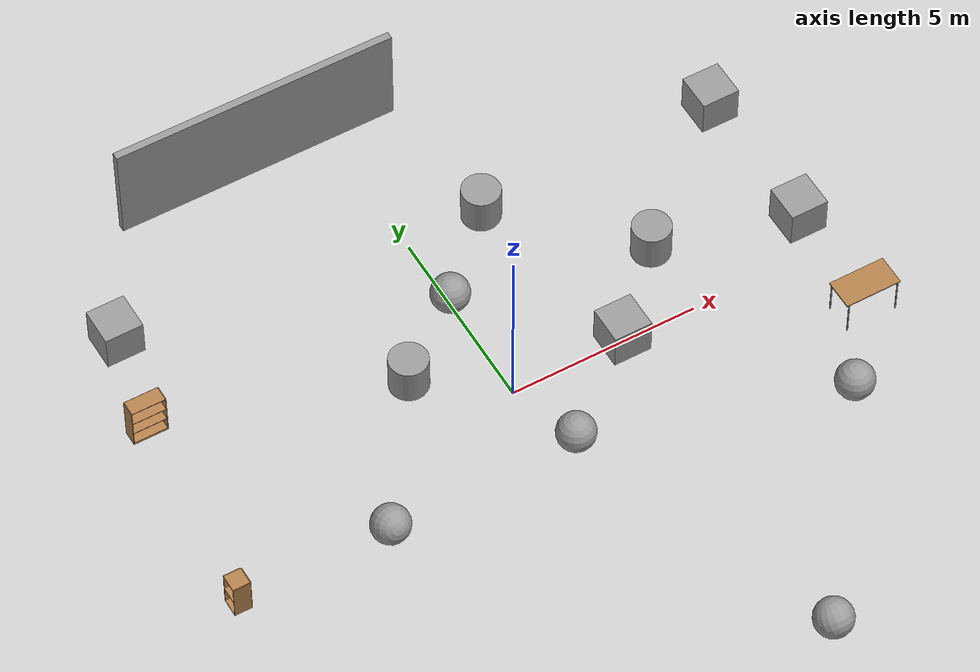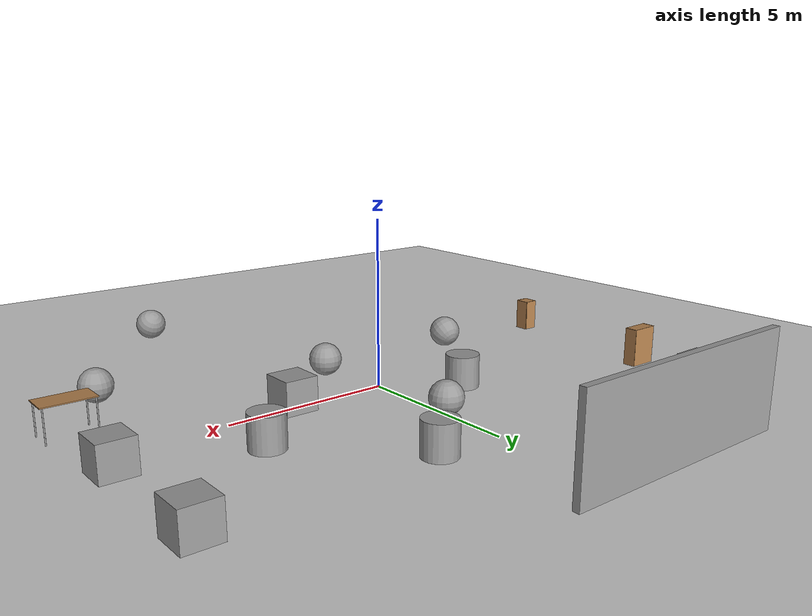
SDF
<sdf version="1.4">
 <world name="default">
  <light name="sun" type="directional">
   <pose>0 0 10 0 -0 0</pose>
   <diffuse>0.8 0.8 0.8 1</diffuse>
   <specular>0.2 0.2 0.2 1</specular>
   <attenuation>
    <range>1000</range>
    <constant>0.9</constant>
    <linear>0.01</linear>
    <quadratic>0.001</quadratic>
   </attenuation>
   <direction>-0.5 0.1 -0.9</direction>
  </light>
  <model name="ground_plane">
   <static>1</static>
   <link name="link">
    <collision name="collision">
     <geometry><plane><normal>0 0 1</normal><size>20 20</size></plane></geometry>
     <surface><friction><ode><mu>100</mu><mu2>50</mu2></ode></friction></surface>
    </collision>
    <visual name="visual">
     <cast_shadows>0</cast_shadows>
     <geometry><plane><normal>0 0 1</normal><size>20 20</size></plane></geometry>
     <material>
      <script>
       <uri>model://mygroundplane/materials/scripts/mygroundplane.material</uri>
       <uri>model://mygroundplane/materials/textures/</uri>
       <name>MyGroundPlane/Image</name>
      </script>
     </material>
    </visual>
    <velocity_decay><linear>0</linear><angular>0</angular></velocity_decay>
   </link>
  </model>
  <physics type="ode">
   <max_step_size>0.001</max_step_size>
   <real_time_factor>1</real_time_factor>
   <real_time_update_rate>1000</real_time_update_rate>
   <gravity>0 0 -9.8</gravity>
  </physics>
  <scene><ambient>0.4 0.4 0.4 1</ambient><background>0.7 0.7 0.7 1</background><shadows>1</shadows></scene>
  <spherical_coordinates>
   <surface_model>EARTH_WGS84</surface_model>
   <latitude_deg>0</latitude_deg>
   <longitude_deg>0</longitude_deg>
   <elevation>0</elevation>
   <heading_deg>0</heading_deg>
  </spherical_coordinates>
  <model name="table">
   <static>1</static>
   <link name="link">
    <collision name="surface">
     <pose>0 0 1 0 -0 0</pose>
     <geometry><box><size>1.5 0.8 0.03</size></box></geometry>
     <surface><friction><ode><mu>0.6</mu><mu2>0.6</mu2></ode></friction></surface>
    </collision>
    <visual name="visual1">
     <pose>0 0 1 0 -0 0</pose>
     <geometry><box><size>1.5 0.8 0.03</size></box></geometry>
     <material>
      <script><uri>file://media/materials/scripts/gazebo.material</uri><name>Gazebo/Wood</name></script>
     </material>
    </visual>
    <collision name="front_left_leg">
     <pose>0.68 0.38 0.5 0 -0 0</pose>
     <geometry><cylinder><radius>0.02</radius><length>1</length></cylinder></geometry>
    </collision>
    <visual name="front_left_leg">
     <pose>0.68 0.38 0.5 0 -0 0</pose>
     <geometry><cylinder><radius>0.02</radius><length>1</length></cylinder></geometry>
     <material>
      <script><uri>file://media/materials/scripts/gazebo.material</uri><name>Gazebo/Grey</name></script>
     </material>
    </visual>
    <collision name="front_right_leg">
     <pose>0.68 -0.38 0.5 0 -0 0</pose>
     <geometry><cylinder><radius>0.02</radius><length>1</length></cylinder></geometry>
    </collision>
    <visual name="front_right_leg">
     <pose>0.68 -0.38 0.5 0 -0 0</pose>
     <geometry><cylinder><radius>0.02</radius><length>1</length></cylinder></geometry>
     <material>
      <script><uri>file://media/materials/scripts/gazebo.material</uri><name>Gazebo/Grey</name></script>
     </material>
    </visual>
    <collision name="back_right_leg">
     <pose>-0.68 -0.38 0.5 0 -0 0</pose>
     <geometry><cylinder><radius>0.02</radius><length>1</length></cylinder></geometry>
    </collision>
    <visual name="back_right_leg">
     <pose>-0.68 -0.38 0.5 0 -0 0</pose>
     <geometry><cylinder><radius>0.02</radius><length>1</length></cylinder></geometry>
     <material>
      <script><uri>file://media/materials/scripts/gazebo.material</uri><name>Gazebo/Grey</name></script>
     </material>
    </visual>
    <collision name="back_left_leg">
     <pose>-0.68 0.38 0.5 0 -0 0</pose>
     <geometry><cylinder><radius>0.02</radius><length>1</length></cylinder></geometry>
    </collision>
    <visual name="back_left_leg">
     <pose>-0.68 0.38 0.5 0 -0 0</pose>
     <geometry><cylinder><radius>0.02</radius><length>1</length></cylinder></geometry>
     <material>
      <script><uri>file://media/materials/scripts/gazebo.material</uri><name>Gazebo/Grey</name></script>
     </material>
    </visual>
    <velocity_decay><linear>0</linear><angular>0</angular></velocity_decay>
   </link>
   <pose>8.50921 -2 0 0 -0 0</pose>
  </model>
  <model name="grey_wall">
   <static>1</static>
   <link name="link">
    <pose>0 0 1.4 0 -0 0</pose>
    <collision name="collision"><geometry><box><size>7.5 0.2 2.8</size></box></geometry></collision>
    <visual name="visual">
     <cast_shadows>0</cast_shadows>
     <geometry><box><size>7.5 0.2 2.8</size></box></geometry>
     <material>
      <script>
       <uri>model://grey_wall/materials/scripts</uri>
       <uri>model://grey_wall/materials/textures</uri>
       <name>vrc/grey_wall</name>
      </script>
     </material>
    </visual>
    <velocity_decay><linear>0</linear><angular>0</angular></velocity_decay>
   </link>
   <pose>-2 9 0 0 -0 0</pose>
  </model>
  <model name="unit_cylinder_2">
   <pose>-2 1.47342 0.499999 0 -0 0</pose>
   <link name="link">
    <inertial>
     <mass>1</mass>
     <inertia><ixx>1</ixx><ixy>0</ixy><ixz>0</ixz><iyy>1</iyy><iyz>0</iyz><izz>1</izz></inertia>
    </inertial>
    <collision name="collision">
     <geometry><cylinder><radius>0.5</radius><length>1</length></cylinder></geometry>
    </collision>
    <visual name="visual">
     <geometry><cylinder><radius>0.5</radius><length>1</length></cylinder></geometry>
     <material>
      <script><uri>file://media/materials/scripts/gazebo.material</uri><name>Gazebo/Grey</name></script>
     </material>
    </visual>
    <velocity_decay><linear>0</linear><angular>0</angular></velocity_decay>
   </link>
   <static>0</static>
  </model>
  <model name="unit_box_2">
   <pose>8.54251 1 0.5 0 -0 0</pose>
   <link name="link">
    <inertial>
     <mass>1</mass>
     <inertia><ixx>1</ixx><ixy>0</ixy><ixz>0</ixz><iyy>1</iyy><iyz>0</iyz><izz>1</izz></inertia>
    </inertial>
    <collision name="collision"><geometry><box><size>1 1 1</size></box></geometry></collision>
    <visual name="visual">
     <geometry><box><size>1 1 1</size></box></geometry>
     <material>
      <script><uri>file://media/materials/scripts/gazebo.material</uri><name>Gazebo/Grey</name></script>
     </material>
    </visual>
    <velocity_decay><linear>0</linear><angular>0</angular></velocity_decay>
   </link>
   <static>0</static>
  </model>
  <model name="unit_sphere_2">
   <pose>7 -4 0.5 0 -0 0</pose>
   <link name="link">
    <inertial>
     <mass>1</mass>
     <inertia><ixx>1</ixx><ixy>0</ixy><ixz>0</ixz><iyy>1</iyy><iyz>0</iyz><izz>1</izz></inertia>
    </inertial>
    <collision name="collision"><geometry><sphere><radius>0.5</radius></sphere></geometry></collision>
    <visual name="visual">
     <geometry><sphere><radius>0.5</radius></sphere></geometry>
     <material>
      <script><uri>file://media/materials/scripts/gazebo.material</uri><name>Gazebo/Grey</name></script>
     </material>
    </visual>
    <velocity_decay><linear>0</linear><angular>0</angular></velocity_decay>
   </link>
   <static>0</static>
  </model>
  <model name="unit_box_4">
   <pose>-7.44837 5.9751 0.5 0 -0 0.006207</pose>
   <link name="link">
    <inertial>
     <mass>1</mass>
     <inertia><ixx>1</ixx><ixy>0</ixy><ixz>0</ixz><iyy>1</iyy><iyz>0</iyz><izz>1</izz></inertia>
    </inertial>
    <collision name="collision"><geometry><box><size>1 1 1</size></box></geometry></collision>
    <visual name="visual">
     <geometry><box><size>1 1 1</size></box></geometry>
     <material>
      <script><uri>file://media/materials/scripts/gazebo.material</uri><name>Gazebo/Grey</name></script>
     </material>
    </visual>
    <velocity_decay><linear>0</linear><angular>0</angular></velocity_decay>
   </link>
   <static>0</static>
  </model>
  <model name="unit_sphere_3">
   <pose>-4.49915 -2.10833 0.5 2.1718 0.004266 3.13759</pose>
   <link name="link">
    <inertial>
     <mass>1</mass>
     <inertia><ixx>1</ixx><ixy>0</ixy><ixz>0</ixz><iyy>1</iyy><iyz>0</iyz><izz>1</izz></inertia>
    </inertial>
    <collision name="collision"><geometry><sphere><radius>0.5</radius></sphere></geometry></collision>
    <visual name="visual">
     <geometry><sphere><radius>0.5</radius></sphere></geometry>
     <material>
      <script><uri>file://media/materials/scripts/gazebo.material</uri><name>Gazebo/Grey</name></script>
     </material>
    </visual>
    <velocity_decay><linear>0</linear><angular>0</angular></velocity_decay>
   </link>
   <static>0</static>
  </model>
  <model name="unit_sphere_5">
   <pose>2.98996 -9.40721 0.5 -0.761274 -0.011213 0.005728</pose>
   <link name="link">
    <inertial>
     <mass>1</mass>
     <inertia><ixx>1</ixx><ixy>0</ixy><ixz>0</ixz><iyy>1</iyy><iyz>0</iyz><izz>1</izz></inertia>
    </inertial>
    <collision name="collision"><geometry><sphere><radius>0.5</radius></sphere></geometry></collision>
    <visual name="visual">
     <geometry><sphere><radius>0.5</radius></sphere></geometry>
     <material>
      <script><uri>file://media/materials/scripts/gazebo.material</uri><name>Gazebo/Grey</name></script>
     </material>
    </visual>
    <velocity_decay><linear>0</linear><angular>0</angular></velocity_decay>
   </link>
   <static>0</static>
  </model>
  <model name="unit_sphere_7">
   <pose>0.543294 -2 0.5 0 -0 0</pose>
   <link name="link">
    <inertial>
     <mass>1</mass>
     <inertia><ixx>1</ixx><ixy>0</ixy><ixz>0</ixz><iyy>1</iyy><iyz>0</iyz><izz>1</izz></inertia>
    </inertial>
    <collision name="collision"><geometry><sphere><radius>0.5</radius></sphere></geometry></collision>
    <visual name="visual">
     <geometry><sphere><radius>0.5</radius></sphere></geometry>
     <material>
      <script><uri>file://media/materials/scripts/gazebo.material</uri><name>Gazebo/Grey</name></script>
     </material>
    </visual>
    <velocity_decay><linear>0</linear><angular>0</angular></velocity_decay>
   </link>
   <static>0</static>
  </model>
  <model name="unit_box_9">
   <pose>3 0 0.5 0 -0 0</pose>
   <link name="link">
    <inertial>
     <mass>1</mass>
     <inertia><ixx>1</ixx><ixy>0</ixy><ixz>0</ixz><iyy>1</iyy><iyz>0</iyz><izz>1</izz></inertia>
    </inertial>
    <collision name="collision"><geometry><box><size>1 1 1</size></box></geometry></collision>
    <visual name="visual">
     <geometry><box><size>1 1 1</size></box></geometry>
     <material>
      <script><uri>file://media/materials/scripts/gazebo.material</uri><name>Gazebo/Grey</name></script>
     </material>
    </visual>
    <velocity_decay><linear>0</linear><angular>0</angular></velocity_decay>
   </link>
   <static>0</static>
  </model>
  <model name="unit_cylinder_4">
   <pose>5 2 0.499992 -1e-06 -0 0</pose>
   <link name="link">
    <inertial>
     <mass>1</mass>
     <inertia><ixx>1</ixx><ixy>0</ixy><ixz>0</ixz><iyy>1</iyy><iyz>0</iyz><izz>1</izz></inertia>
    </inertial>
    <collision name="collision">
     <geometry><cylinder><radius>0.5</radius><length>1</length></cylinder></geometry>
    </collision>
    <visual name="visual">
     <geometry><cylinder><radius>0.5</radius><length>1</length></cylinder></geometry>
     <material>
      <script><uri>file://media/materials/scripts/gazebo.material</uri><name>Gazebo/Grey</name></script>
     </material>
    </visual>
    <velocity_decay><linear>0</linear><angular>0</angular></velocity_decay>
   </link>
   <static>0</static>
  </model>
  <model name="unit_box_11">
   <pose>8.48816 5 0.5 0 -0 0</pose>
   <link name="link">
    <inertial>
     <mass>1</mass>
     <inertia><ixx>1</ixx><ixy>0</ixy><ixz>0</ixz><iyy>1</iyy><iyz>0</iyz><izz>1</izz></inertia>
    </inertial>
    <collision name="collision"><geometry><box><size>1 1 1</size></box></geometry></collision>
    <visual name="visual">
     <geometry><box><size>1 1 1</size></box></geometry>
     <material>
      <script><uri>file://media/materials/scripts/gazebo.material</uri><name>Gazebo/Grey</name></script>
     </material>
    </visual>
    <velocity_decay><linear>0</linear><angular>0</angular></velocity_decay>
   </link>
   <static>0</static>
  </model>
  <model name="unit_cylinder_6">
   <pose>2 5 0.499992 -1e-06 -0 0</pose>
   <link name="link">
    <inertial>
     <mass>1</mass>
     <inertia><ixx>1</ixx><ixy>0</ixy><ixz>0</ixz><iyy>1</iyy><iyz>0</iyz><izz>1</izz></inertia>
    </inertial>
    <collision name="collision">
     <geometry><cylinder><radius>0.5</radius><length>1</length></cylinder></geometry>
    </collision>
    <visual name="visual">
     <geometry><cylinder><radius>0.5</radius><length>1</length></cylinder></geometry>
     <material>
      <script><uri>file://media/materials/scripts/gazebo.material</uri><name>Gazebo/Grey</name></script>
     </material>
    </visual>
    <velocity_decay><linear>0</linear><angular>0</angular></velocity_decay>
   </link>
   <static>0</static>
  </model>
  <model name="unit_sphere_9">
   <pose>0 3 0.5 0 -0 0</pose>
   <link name="link">
    <inertial>
     <mass>1</mass>
     <inertia><ixx>1</ixx><ixy>0</ixy><ixz>0</ixz><iyy>1</iyy><iyz>0</iyz><izz>1</izz></inertia>
    </inertial>
    <collision name="collision"><geometry><sphere><radius>0.5</radius></sphere></geometry></collision>
    <visual name="visual">
     <geometry><sphere><radius>0.5</radius></sphere></geometry>
     <material>
      <script><uri>file://media/materials/scripts/gazebo.material</uri><name>Gazebo/Grey</name></script>
     </material>
    </visual>
    <velocity_decay><linear>0</linear><angular>0</angular></velocity_decay>
   </link>
   <static>0</static>
  </model>
  <model name="bookshelf">
   <static>1</static>
   <link name="link">
    <inertial><mass>1</mass></inertial>
    <collision name="back">
     <pose>0 0.005 0.6 0 -0 0</pose>
     <geometry><box><size>0.9 0.01 1.2</size></box></geometry>
    </collision>
    <visual name="visual1">
     <pose>0 0.005 0.6 0 -0 0</pose>
     <geometry><box><size>0.9 0.01 1.2</size></box></geometry>
     <material>
      <script><uri>file://media/materials/scripts/gazebo.material</uri><name>Gazebo/Wood</name></script>
     </material>
    </visual>
    <collision name="left_side">
     <pose>0.45 -0.195 0.6 0 -0 0</pose>
     <geometry><box><size>0.02 0.4 1.2</size></box></geometry>
    </collision>
    <visual name="visual2">
     <pose>0.45 -0.195 0.6 0 -0 0</pose>
     <geometry><box><size>0.02 0.4 1.2</size></box></geometry>
     <material>
      <script><uri>file://media/materials/scripts/gazebo.material</uri><name>Gazebo/Wood</name></script>
     </material>
    </visual>
    <collision name="right_side">
     <pose>-0.45 -0.195 0.6 0 -0 0</pose>
     <geometry><box><size>0.02 0.4 1.2</size></box></geometry>
    </collision>
    <visual name="visual3">
     <pose>-0.45 -0.195 0.6 0 -0 0</pose>
     <geometry><box><size>0.02 0.4 1.2</size></box></geometry>
     <material>
      <script><uri>file://media/materials/scripts/gazebo.material</uri><name>Gazebo/Wood</name></script>
     </material>
    </visual>
    <collision name="bottom">
     <pose>0 -0.195 0.03 0 -0 0</pose>
     <geometry><box><size>0.88 0.4 0.06</size></box></geometry>
    </collision>
    <visual name="visual4">
     <pose>0 -0.195 0.03 0 -0 0</pose>
     <geometry><box><size>0.88 0.4 0.06</size></box></geometry>
     <material>
      <script><uri>file://media/materials/scripts/gazebo.material</uri><name>Gazebo/Wood</name></script>
     </material>
    </visual>
    <collision name="top">
     <pose>0 -0.195 1.19 0 -0 0</pose>
     <geometry><box><size>0.88 0.4 0.02</size></box></geometry>
    </collision>
    <visual name="visual5">
     <pose>0 -0.195 1.19 0 -0 0</pose>
     <geometry><box><size>0.88 0.4 0.02</size></box></geometry>
     <material>
      <script><uri>file://media/materials/scripts/gazebo.material</uri><name>Gazebo/Wood</name></script>
     </material>
    </visual>
    <collision name="low_shelf">
     <pose>0 -0.195 0.43 0 -0 0</pose>
     <geometry><box><size>0.88 0.4 0.02</size></box></geometry>
    </collision>
    <visual name="visual6">
     <pose>0 -0.195 0.43 0 -0 0</pose>
     <geometry><box><size>0.88 0.4 0.02</size></box></geometry>
     <material>
      <script><uri>file://media/materials/scripts/gazebo.material</uri><name>Gazebo/Wood</name></script>
     </material>
    </visual>
    <collision name="high_shelf">
     <pose>0 -0.195 0.8 0 -0 0</pose>
     <geometry><box><size>0.88 0.4 0.02</size></box></geometry>
    </collision>
    <visual name="visual7">
     <pose>0 -0.195 0.8 0 -0 0</pose>
     <geometry><box><size>0.88 0.4 0.02</size></box></geometry>
     <material>
      <script><uri>file://media/materials/scripts/gazebo.material</uri><name>Gazebo/Wood</name></script>
     </material>
    </visual>
    <velocity_decay><linear>0</linear><angular>0</angular></velocity_decay>
   </link>
   <pose>-8 3.55606 0 0 -0 0</pose>
  </model>
  <model name="cabinet">
   <static>1</static>
   <link name="cabinet_bottom_plate">
    <inertial>
     <pose>0 0 -1 0 -0 0</pose>
     <inertia><ixx>2.05</ixx><ixy>0</ixy><ixz>0</ixz><iyy>2.05</iyy><iyz>0</iyz><izz>2.05</izz></inertia>
     <mass>25</mass>
    </inertial>
    <collision name="cabinet_bottom_plate_geom">
     <pose>0 0 0.01 0 -0 0</pose>
     <geometry><box><size>0.45 0.45 0.02</size></box></geometry>
    </collision>
    <visual name="cabinet_bottom_plate_geom_visual">
     <pose>0 0 0.01 0 -0 0</pose>
     <geometry><box><size>0.45 0.45 0.02</size></box></geometry>
     <material>
      <script><uri>file://media/materials/scripts/gazebo.material</uri><name>Gazebo/Wood</name></script>
     </material>
    </visual>
    <collision name="cabinet_bottom_plate_geom_cabinet_back_plate">
     <pose>0.235 0 0.51 0 -0 0</pose>
     <geometry><box><size>0.02 0.45 1.02</size></box></geometry>
    </collision>
    <visual name="cabinet_bottom_plate_geom_cabinet_back_plate_visual">
     <pose>0.235 0 0.51 0 -0 0</pose>
     <geometry><box><size>0.02 0.45 1.02</size></box></geometry>
     <material>
      <script><uri>file://media/materials/scripts/gazebo.material</uri><name>Gazebo/Wood</name></script>
     </material>
    </visual>
    <collision name="cabinet_bottom_plate_geom_cabinet_left_plate">
     <pose>0 0.235 0.51 0 -0 0</pose>
     <geometry><box><size>0.45 0.02 1.02</size></box></geometry>
    </collision>
    <visual name="cabinet_bottom_plate_geom_cabinet_left_plate_visual">
     <pose>0 0.235 0.51 0 -0 0</pose>
     <geometry><box><size>0.45 0.02 1.02</size></box></geometry>
     <material>
      <script><uri>file://media/materials/scripts/gazebo.material</uri><name>Gazebo/Wood</name></script>
     </material>
    </visual>
    <collision name="cabinet_bottom_plate_geom_cabinet_middle_plate">
     <pose>0 0 0.51 0 -0 0</pose>
     <geometry><box><size>0.45 0.45 0.02</size></box></geometry>
    </collision>
    <visual name="cabinet_bottom_plate_geom_cabinet_middle_plate_visual">
     <pose>0 0 0.51 0 -0 0</pose>
     <geometry><box><size>0.45 0.45 0.02</size></box></geometry>
     <material>
      <script><uri>file://media/materials/scripts/gazebo.material</uri><name>Gazebo/Wood</name></script>
     </material>
    </visual>
    <collision name="cabinet_bottom_plate_geom_cabinet_right_plate">
     <pose>0 -0.235 0.51 0 -0 0</pose>
     <geometry><box><size>0.45 0.02 1.02</size></box></geometry>
    </collision>
    <visual name="cabinet_bottom_plate_geom_cabinet_right_plate_visual">
     <pose>0 -0.235 0.51 0 -0 0</pose>
     <geometry><box><size>0.45 0.02 1.02</size></box></geometry>
     <material>
      <script><uri>file://media/materials/scripts/gazebo.material</uri><name>Gazebo/Wood</name></script>
     </material>
    </visual>
    <collision name="cabinet_bottom_plate_geom_cabinet_top_plate">
     <pose>0 0 1.01 0 -0 0</pose>
     <geometry><box><size>0.45 0.45 0.02</size></box></geometry>
    </collision>
    <visual name="cabinet_bottom_plate_geom_cabinet_top_plate_visual">
     <pose>0 0 1.01 0 -0 0</pose>
     <geometry><box><size>0.45 0.45 0.02</size></box></geometry>
     <material>
      <script><uri>file://media/materials/scripts/gazebo.material</uri><name>Gazebo/Wood</name></script>
     </material>
    </visual>
    <velocity_decay><linear>0</linear><angular>0</angular></velocity_decay>
   </link>
   <pose>-8.45471 -2 0 0 -0 0</pose>
  </model>
 </world>
</sdf>
